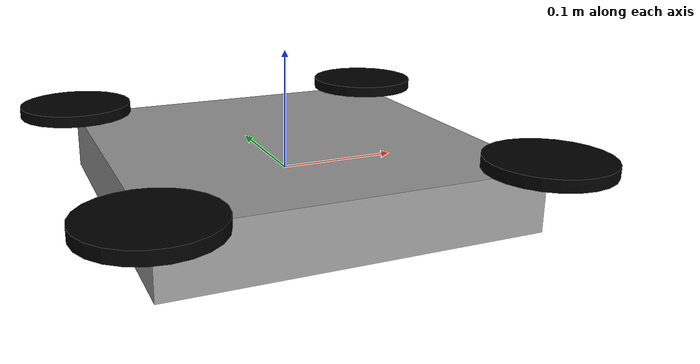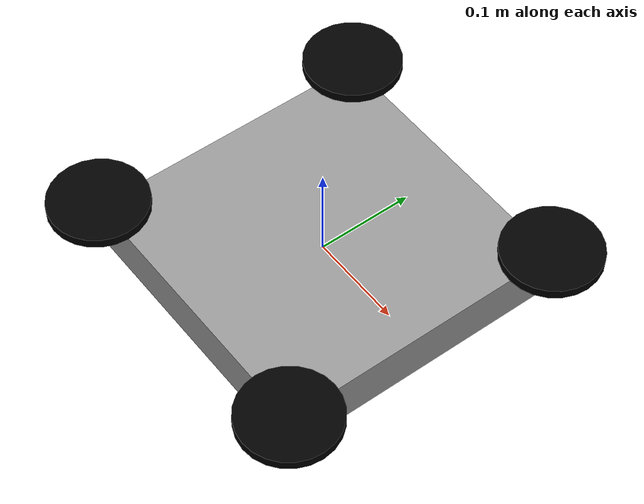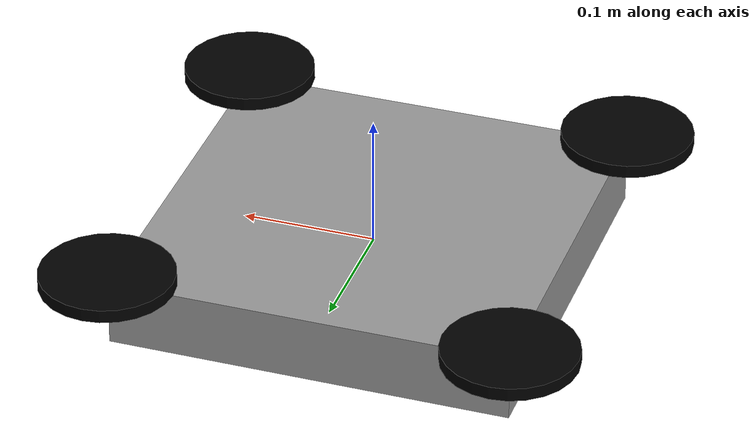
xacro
<?xml version="1.0"?>
<robot name="simple_quadrotor" xmlns:xacro="http://www.ros.org/wiki/xacro">

  <!-- Define reusable variables -->
  <xacro:property name="body_length" value="0.3"/>
  <xacro:property name="body_width" value="0.3"/>
  <xacro:property name="body_height" value="0.05"/>
  <xacro:property name="prop_radius" value="0.05"/>
  <xacro:property name="prop_height" value="0.01"/>
  <xacro:property name="arm_offset" value="0.15"/>

  <!-- Main body of the drone -->
  <link name="base_link">
    <visual>
      <geometry>
        <box size="${body_length} ${body_width} ${body_height}"/>
      </geometry>
      <material name="grey">
        <color rgba="0.6 0.6 0.6 1.0"/>
      </material>
    </visual>
  </link>

  <!-- Propellers - placed at each corner -->
  <!-- Front Left -->
  <link name="prop_fl">
    <visual>
      <geometry>
        <cylinder radius="${prop_radius}" length="${prop_height}"/>
      </geometry>
      <origin xyz="0 0 ${prop_height/2}" rpy="0 0 0"/>
      <material name="black">
        <color rgba="0 0 0 1.0"/>
      </material>
    </visual>
  </link>

  <joint name="joint_fl" type="fixed">
    <parent link="base_link"/>
    <child link="prop_fl"/>
    <origin xyz="${arm_offset} ${arm_offset} ${body_height/2}" rpy="0 0 0"/>
  </joint>

  <!-- Front Right -->
  <link name="prop_fr">
    <visual>
      <geometry>
        <cylinder radius="${prop_radius}" length="${prop_height}"/>
      </geometry>
      <origin xyz="0 0 ${prop_height/2}" rpy="0 0 0"/>
      <material name="black"/>
    </visual>
  </link>

  <joint name="joint_fr" type="fixed">
    <parent link="base_link"/>
    <child link="prop_fr"/>
    <origin xyz="-${arm_offset} ${arm_offset} ${body_height/2}" rpy="0 0 0"/>
  </joint>

  <!-- Back Left -->
  <link name="prop_bl">
    <visual>
      <geometry>
        <cylinder radius="${prop_radius}" length="${prop_height}"/>
      </geometry>
      <origin xyz="0 0 ${prop_height/2}" rpy="0 0 0"/>
      <material name="black"/>
    </visual>
  </link>

  <joint name="joint_bl" type="fixed">
    <parent link="base_link"/>
    <child link="prop_bl"/>
    <origin xyz="${arm_offset} -${arm_offset} ${body_height/2}" rpy="0 0 0"/>
  </joint>

  <!-- Back Right -->
  <link name="prop_br">
    <visual>
      <geometry>
        <cylinder radius="${prop_radius}" length="${prop_height}"/>
      </geometry>
      <origin xyz="0 0 ${prop_height/2}" rpy="0 0 0"/>
      <material name="black"/>
    </visual>
  </link>

  <joint name="joint_br" type="fixed">
    <parent link="base_link"/>
    <child link="prop_br"/>
    <origin xyz="-${arm_offset} -${arm_offset} ${body_height/2}" rpy="0 0 0"/>
  </joint>

</robot>
